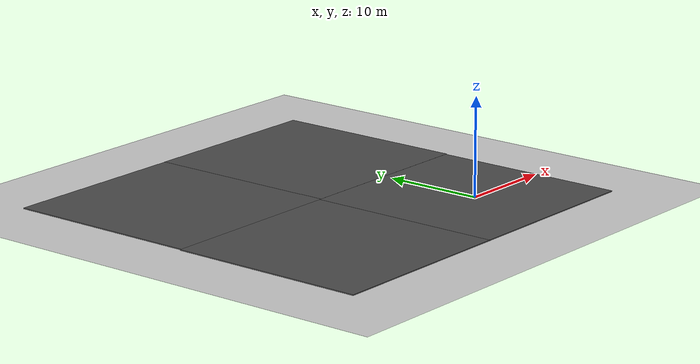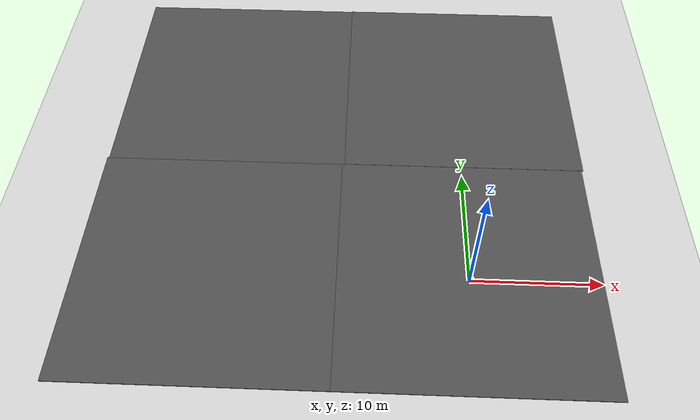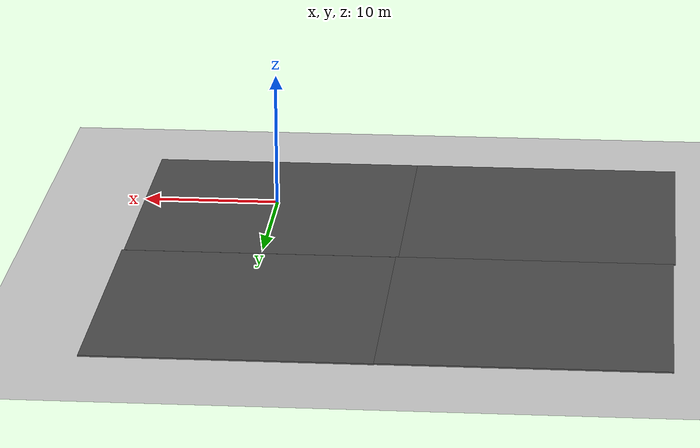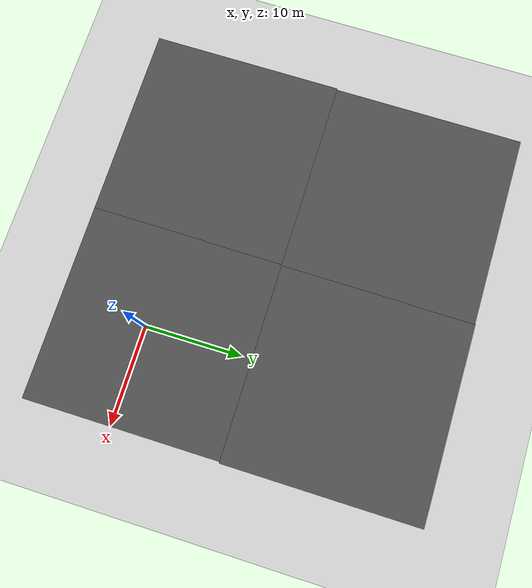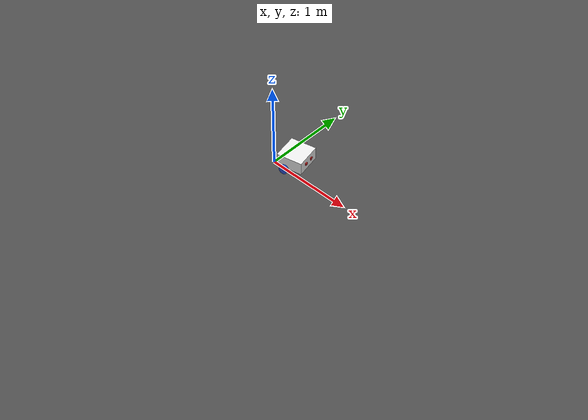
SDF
<sdf version="1.7">
 <world name="default">
  <light name="sun" type="directional">
   <pose>0 0 10 0 -0 0</pose>
   <diffuse>0.8 0.8 0.8 1</diffuse>
   <specular>0.2 0.2 0.2 1</specular>
   <attenuation>
    <range>1000</range>
    <constant>0.9</constant>
    <linear>0.01</linear>
    <quadratic>0.001</quadratic>
   </attenuation>
   <direction>-0.5 0.1 -0.9</direction>
   <spot><inner_angle>0</inner_angle><outer_angle>0</outer_angle><falloff>0</falloff></spot>
  </light>
  <model name="ground_plane">
   <static>1</static>
   <link name="link">
    <collision name="collision">
     <geometry><plane><normal>0 0 1</normal><size>100 100</size></plane></geometry>
     <surface>
      <contact><collide_bitmask>65535</collide_bitmask></contact>
      <friction><ode><mu>100</mu><mu2>50</mu2></ode></friction>
     </surface>
    </collision>
    <visual name="visual">
     <cast_shadows>0</cast_shadows>
     <geometry><plane><normal>0 0 1</normal><size>100 100</size></plane></geometry>
     <material>
      <script><uri>file://media/materials/scripts/gazebo.material</uri><name>Gazebo/Grey</name></script>
     </material>
    </visual>
   </link>
  </model>
  <gravity>0 0 -9.8</gravity>
  <magnetic_field>6e-06 2.3e-05 -4.2e-05</magnetic_field>
  <atmosphere type="adiabatic"/>
  <physics type="ode">
   <max_step_size>0.001</max_step_size>
   <real_time_factor>1</real_time_factor>
   <real_time_update_rate>1000</real_time_update_rate>
  </physics>
  <scene><ambient>0.4 0.4 0.4 1</ambient><background>0.7 0.7 0.7 1</background><shadows>1</shadows></scene>
  <audio><device>default</device></audio>
  <spherical_coordinates>
   <surface_model>EARTH_WGS84</surface_model>
   <latitude_deg>0</latitude_deg>
   <longitude_deg>0</longitude_deg>
   <elevation>0</elevation>
   <heading_deg>0</heading_deg>
  </spherical_coordinates>
  <model name="my_bot">
   <link name="base_link">
    <inertial>
     <pose>0.065 0 0.0625 0 -0 0</pose>
     <mass>0.6</mass>
     <inertia>
      <ixx>0.00525625</ixx>
      <ixy>0</ixy>
      <ixz>0.0005625</ixz>
      <iyy>0.00593125</iyy>
      <iyz>0</iyz>
      <izz>0.008275</izz>
     </inertia>
    </inertial>
    <collision name="base_link_fixed_joint_lump__chassis_collision">
     <pose>0.05 0 0.075 0 -0 0</pose>
     <geometry><box><size>0.3 0.3 0.15</size></box></geometry>
    </collision>
    <collision name="base_link_fixed_joint_lump__caster_wheel_collision_1">
     <pose>0.14 0 0 0 -0 0</pose>
     <geometry><sphere><radius>0.05</radius></sphere></geometry>
     <surface><friction><ode><mu>0.001</mu><mu2>0.001</mu2></ode></friction></surface>
    </collision>
    <visual name="base_link_fixed_joint_lump__chassis_visual">
     <pose>0.05 0 0.075 0 -0 0</pose>
     <geometry><box><size>0.3 0.3 0.15</size></box></geometry>
     <material>
      <script><name>Gazebo/White</name><uri>file://media/materials/scripts/gazebo.material</uri></script>
     </material>
    </visual>
    <visual name="base_link_fixed_joint_lump__caster_wheel_visual_1">
     <pose>0.14 0 0 0 -0 0</pose>
     <geometry><sphere><radius>0.05</radius></sphere></geometry>
     <material>
      <script><name>Gazebo/Black</name><uri>file://media/materials/scripts/gazebo.material</uri></script>
     </material>
    </visual>
    <visual name="base_link_fixed_joint_lump__left_camera_link_visual_2">
     <pose>0.205 0.05 0.08 0 -0 0</pose>
     <geometry><box><size>0.01 0.03 0.03</size></box></geometry>
     <material>
      <script><name>Gazebo/Red</name><uri>file://media/materials/scripts/gazebo.material</uri></script>
     </material>
    </visual>
    <visual name="base_link_fixed_joint_lump__right_camera_link_visual_3">
     <pose>0.205 -0.05 0.08 0 -0 0</pose>
     <geometry><box><size>0.01 0.03 0.03</size></box></geometry>
     <material>
      <script><name>Gazebo/Red</name><uri>file://media/materials/scripts/gazebo.material</uri></script>
     </material>
    </visual>
    <sensor name="left_camera" type="camera">
     <visualize>1</visualize>
     <update_rate>10</update_rate>
     <camera>
      <horizontal_fov>1.089</horizontal_fov>
      <image><format>R8G8B8</format><width>640</width><height>480</height></image>
      <clip><near>0.05</near><far>8</far></clip>
     </camera>
     <plugin name="left_camera_controller" filename="libgazebo_ros_camera.so">
      <frame_name>left_camera_link_optical</frame_name>
     </plugin>
     <pose>0.205 0.05 0.08 0 -0 0</pose>
    </sensor>
    <sensor name="right_camera" type="camera">
     <visualize>1</visualize>
     <update_rate>10</update_rate>
     <camera>
      <horizontal_fov>1.089</horizontal_fov>
      <image><format>R8G8B8</format><width>640</width><height>480</height></image>
      <clip><near>0.05</near><far>8</far></clip>
     </camera>
     <plugin name="right_camera_controller" filename="libgazebo_ros_camera.so">
      <frame_name>right_camera_link_optical</frame_name>
     </plugin>
     <pose>0.205 -0.05 0.08 0 -0 0</pose>
    </sensor>
   </link>
   <joint name="left_wheel_joint" type="revolute">
    <pose relative_to="base_link">0 0.175 0 -1.5708 0 0</pose>
    <parent>base_link</parent>
    <child>left_wheel</child>
    <axis>
     <xyz>0 0 1</xyz>
     <limit><lower>-1e+16</lower><upper>1e+16</upper></limit>
     <dynamics><spring_reference>0</spring_reference><spring_stiffness>0</spring_stiffness></dynamics>
    </axis>
   </joint>
   <link name="left_wheel">
    <pose relative_to="left_wheel_joint">0 0 0 0 -0 0</pose>
    <inertial>
     <mass>0.1</mass>
     <inertia>
      <ixx>7.58333e-05</ixx>
      <ixy>0</ixy>
      <ixz>0</ixz>
      <iyy>7.58333e-05</iyy>
      <iyz>0</iyz>
      <izz>0.000125</izz>
     </inertia>
    </inertial>
    <collision name="left_wheel_collision">
     <geometry><cylinder><length>0.04</length><radius>0.05</radius></cylinder></geometry>
    </collision>
    <visual name="left_wheel_visual">
     <geometry><cylinder><length>0.04</length><radius>0.05</radius></cylinder></geometry>
     <material>
      <script><name>Gazebo/Blue</name><uri>file://media/materials/scripts/gazebo.material</uri></script>
     </material>
    </visual>
   </link>
   <joint name="right_wheel_joint" type="revolute">
    <pose relative_to="base_link">0 -0.175 0 1.5708 -0 0</pose>
    <parent>base_link</parent>
    <child>right_wheel</child>
    <axis>
     <xyz>0 0 -1</xyz>
     <limit><lower>-1e+16</lower><upper>1e+16</upper></limit>
     <dynamics><spring_reference>0</spring_reference><spring_stiffness>0</spring_stiffness></dynamics>
    </axis>
   </joint>
   <link name="right_wheel">
    <pose relative_to="right_wheel_joint">0 0 0 0 -0 0</pose>
    <inertial>
     <mass>0.1</mass>
     <inertia>
      <ixx>7.58333e-05</ixx>
      <ixy>0</ixy>
      <ixz>0</ixz>
      <iyy>7.58333e-05</iyy>
      <iyz>0</iyz>
      <izz>0.000125</izz>
     </inertia>
    </inertial>
    <collision name="right_wheel_collision">
     <geometry><cylinder><length>0.04</length><radius>0.05</radius></cylinder></geometry>
    </collision>
    <visual name="right_wheel_visual">
     <geometry><cylinder><length>0.04</length><radius>0.05</radius></cylinder></geometry>
     <material>
      <script><name>Gazebo/Blue</name><uri>file://media/materials/scripts/gazebo.material</uri></script>
     </material>
    </visual>
   </link>
   <static>0</static>
   <plugin name="diff_drive" filename="libgazebo_ros_diff_drive.so">
    <left_joint>left_wheel_joint</left_joint>
    <right_joint>right_wheel_joint</right_joint>
    <wheel_separation>0.35</wheel_separation>
    <wheel_diameter>0.1</wheel_diameter>
    <max_wheel_torque>200</max_wheel_torque>
    <max_wheel_acceleration>10.0</max_wheel_acceleration>
    <odometry_frame>odom</odometry_frame>
    <robot_base_frame>base_link</robot_base_frame>
    <publish_odom>1</publish_odom>
    <publish_odom_tf>1</publish_odom_tf>
    <publish_wheel_tf>1</publish_wheel_tf>
   </plugin>
   <pose>0.194397 0.085334 0.099998 2.3e-05 -1.4e-05 0.19877</pose>
  </model>
  <model name="asphalt_plane_0">
   <static>1</static>
   <link name="link">
    <collision name="collision"><geometry><box><size>20 20 0.1</size></box></geometry></collision>
    <visual name="visual">
     <cast_shadows>0</cast_shadows>
     <geometry><box><size>20 20 0.1</size></box></geometry>
     <material>
      <script>
       <uri>model://asphalt_plane/materials/scripts</uri>
       <uri>model://asphalt_plane/materials/textures</uri>
       <name>vrc/asphalt</name>
      </script>
     </material>
    </visual>
   </link>
   <pose>-19.9021 0.975671 0 0 -0 0</pose>
  </model>
  <model name="asphalt_plane_1">
   <static>1</static>
   <link name="link">
    <collision name="collision"><geometry><box><size>20 20 0.1</size></box></geometry></collision>
    <visual name="visual">
     <cast_shadows>0</cast_shadows>
     <geometry><box><size>20 20 0.1</size></box></geometry>
     <material>
      <script>
       <uri>model://asphalt_plane/materials/scripts</uri>
       <uri>model://asphalt_plane/materials/textures</uri>
       <name>vrc/asphalt</name>
      </script>
     </material>
    </visual>
   </link>
   <pose>-19.7589 20.9399 0 0 -0 0</pose>
  </model>
  <model name="asphalt_plane_2">
   <static>1</static>
   <link name="link">
    <collision name="collision"><geometry><box><size>20 20 0.1</size></box></geometry></collision>
    <visual name="visual">
     <cast_shadows>0</cast_shadows>
     <geometry><box><size>20 20 0.1</size></box></geometry>
     <material>
      <script>
       <uri>model://asphalt_plane/materials/scripts</uri>
       <uri>model://asphalt_plane/materials/textures</uri>
       <name>vrc/asphalt</name>
      </script>
     </material>
    </visual>
   </link>
   <pose>0.186473 20.9851 0 0 -0 0</pose>
  </model>
  <model name="asphalt_plane">
   <static>1</static>
   <link name="link">
    <collision name="collision"><geometry><box><size>20 20 0.1</size></box></geometry></collision>
    <visual name="visual">
     <cast_shadows>0</cast_shadows>
     <geometry><box><size>20 20 0.1</size></box></geometry>
     <material>
      <script>
       <uri>model://asphalt_plane/materials/scripts</uri>
       <uri>model://asphalt_plane/materials/textures</uri>
       <name>vrc/asphalt</name>
      </script>
     </material>
    </visual>
   </link>
   <pose>0.038477 0.978275 0 0 -0 0</pose>
  </model>
 </world>
</sdf>
